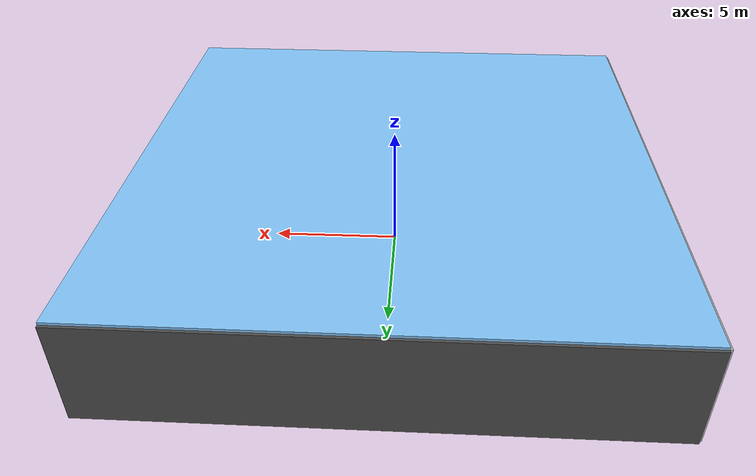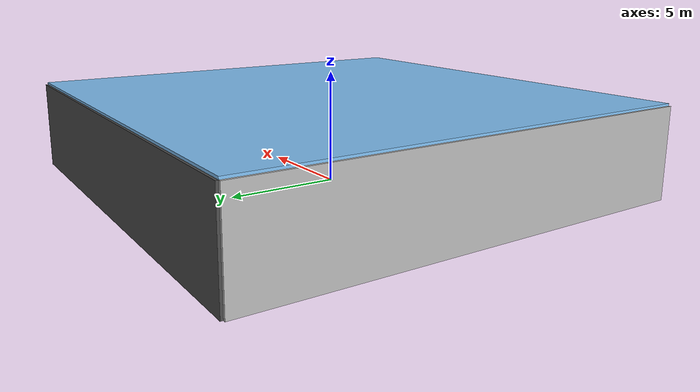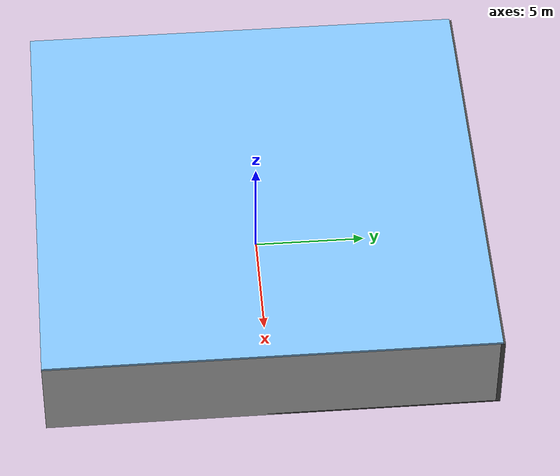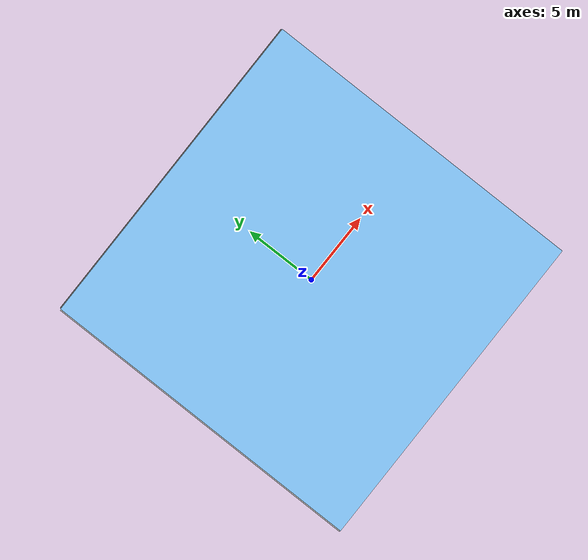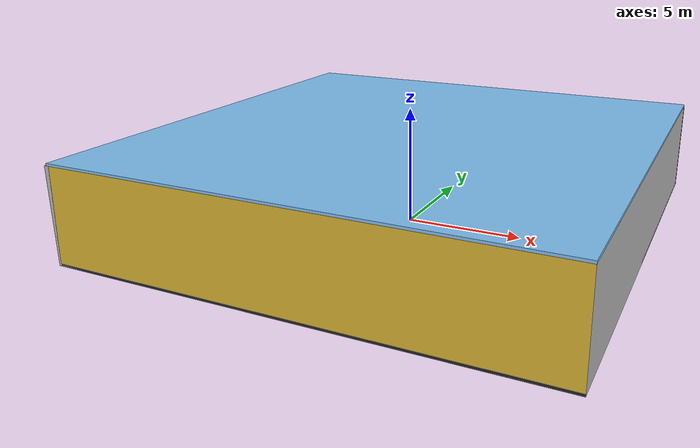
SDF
<sdf version="1.4">
 <world name="default">
  <physics type="ode">
   <max_step_size>0.001</max_step_size>
   <real_time_factor>1</real_time_factor>
   <real_time_update_rate>1000</real_time_update_rate>
   <gravity>0 0 -9.8</gravity>
  </physics>
  <scene><ambient>0.4 0.4 0.4 1</ambient><background>0.7 0.7 0.7 1</background><shadows>1</shadows></scene>
  <model name="Surrounding">
   <static>1</static>
   <link name="Ceiling">
    <collision name="Ceiling_Collision"><geometry><box><size>20 20 0.1</size></box></geometry></collision>
    <visual name="Ceiling_Visual">
     <geometry><box><size>20 20 0.1</size></box></geometry>
     <material>
      <script><uri>file://media/materials/scripts/gazebo.material</uri><name>Gazebo/SkyBlue</name></script>
     </material>
    </visual>
    <pose>0 0 4.05 0 0 0</pose>
   </link>
   <link name="Wall_South">
    <collision name="Wall_South_Collision">
     <geometry><box><size>20 0 4</size></box></geometry>
     <pose>0 0 2 0 -0 0</pose>
    </collision>
    <visual name="Wall_South_Visual">
     <pose>0 0 2 0 -0 0</pose>
     <geometry><box><size>20 0 4</size></box></geometry>
     <material>
      <script><uri>file://media/materials/scripts/gazebo.material</uri><name>Gazebo/Gold</name></script>
     </material>
    </visual>
    <velocity_decay><linear>0</linear><angular>0</angular></velocity_decay>
    <pose>0 -10 0 0 -0 0</pose>
   </link>
   <link name="Wall_East">
    <collision name="Wall_21_Collision">
     <geometry><box><size>20 0 4</size></box></geometry>
     <pose>0 0 2 0 -0 0</pose>
    </collision>
    <visual name="Wall_21_Visual">
     <pose>0 0 2 0 -0 0</pose>
     <geometry><box><size>20 0 4</size></box></geometry>
     <material>
      <script><uri>file://media/materials/scripts/gazebo.material</uri><name>Gazebo/JointAnchor</name></script>
     </material>
    </visual>
    <velocity_decay><linear>0</linear><angular>0</angular></velocity_decay>
    <pose>10 0 0 0 -0 1.5708</pose>
   </link>
   <link name="Wall_North">
    <collision name="Wall_22_Collision">
     <geometry><box><size>20 0.2 4</size></box></geometry>
     <pose>0 0 2 0 -0 0</pose>
    </collision>
    <visual name="Wall_22_Visual">
     <pose>0 0 2 0 -0 0</pose>
     <geometry><box><size>20 0.2 4</size></box></geometry>
     <material>
      <script><uri>file://media/materials/scripts/gazebo.material</uri><name>Gazebo/DarkGrey</name></script>
     </material>
    </visual>
    <velocity_decay><linear>0</linear><angular>0</angular></velocity_decay>
    <pose>0 10 0 0 -0 0</pose>
   </link>
   <link name="Wall_West">
    <collision name="Wall_23_Collision">
     <geometry><box><size>20 0.2 4</size></box></geometry>
     <pose>0 0 2 0 -0 0</pose>
    </collision>
    <visual name="Wall_23_Visual">
     <pose>0 0 2 0 -0 0</pose>
     <geometry><box><size>20 0.2 4</size></box></geometry>
     <material>
      <script><uri>file://media/materials/scripts/gazebo.material</uri><name>Gazebo/Pioneer2Body</name></script>
     </material>
    </visual>
    <velocity_decay><linear>0</linear><angular>0</angular></velocity_decay>
    <pose>-10 0 0 0 0 -1.5708</pose>
   </link>
   <link name="Ground_link">
    <collision name="collision">
     <pose>0 0 .05 0 -0 0</pose>
     <geometry><box><size>20 20 0.1</size></box></geometry>
    </collision>
    <visual name="visual">
     <pose>0 0 .05 0 -0 0</pose>
     <geometry><box><size>20 20 0.1</size></box></geometry>
     <material>
      <script><uri>file://media/materials/scripts/gazebo.material</uri><name>Gazebo/Black</name></script>
     </material>
    </visual>
   </link>
   <static>1</static>
  </model>
  <spherical_coordinates>
   <surface_model>EARTH_WGS84</surface_model>
   <latitude_deg>0</latitude_deg>
   <longitude_deg>0</longitude_deg>
   <elevation>0</elevation>
   <heading_deg>0</heading_deg>
  </spherical_coordinates>
  <light name="lightball_0" type="diffuse">
   <diffuse>0.8 0.8 0.8 1</diffuse>
   <specular>0.2 0.2 0.2 1</specular>
   <attenuation>
    <range>100</range>
    <constant>0.7</constant>
    <linear>0.01</linear>
    <quadratic>0.001</quadratic>
   </attenuation>
   <direction>-0.5 0.1 -0.9</direction>
   <pose>2.30974688141 -5.09406536979 0.845071622237 0 0 0</pose>
  </light>
  <light name="lightball_1" type="diffuse">
   <diffuse>0.8 0.8 0.8 1</diffuse>
   <specular>0.2 0.2 0.2 1</specular>
   <attenuation>
    <range>100</range>
    <constant>0.7</constant>
    <linear>0.01</linear>
    <quadratic>0.001</quadratic>
   </attenuation>
   <direction>-0.5 0.1 -0.9</direction>
   <pose>4.43167269072 5.66205465324 3.85635557281 0 0 0</pose>
  </light>
  <light name="lightball_2" type="diffuse">
   <diffuse>0.8 0.8 0.8 1</diffuse>
   <specular>0.2 0.2 0.2 1</specular>
   <attenuation>
    <range>100</range>
    <constant>0.7</constant>
    <linear>0.01</linear>
    <quadratic>0.001</quadratic>
   </attenuation>
   <direction>-0.5 0.1 -0.9</direction>
   <pose>-2.12526820954 -7.93437886526 3.79149642291 0 0 0</pose>
  </light>
  <light name="lightball_3" type="diffuse">
   <diffuse>0.8 0.8 0.8 1</diffuse>
   <specular>0.2 0.2 0.2 1</specular>
   <attenuation>
    <range>100</range>
    <constant>0.7</constant>
    <linear>0.01</linear>
    <quadratic>0.001</quadratic>
   </attenuation>
   <direction>-0.5 0.1 -0.9</direction>
   <pose>-5.92707380793 3.78590164119 1.06922269329 0 0 0</pose>
  </light>
  <light name="lightball_4" type="diffuse">
   <diffuse>0.8 0.8 0.8 1</diffuse>
   <specular>0.2 0.2 0.2 1</specular>
   <attenuation>
    <range>100</range>
    <constant>0.7</constant>
    <linear>0.01</linear>
    <quadratic>0.001</quadratic>
   </attenuation>
   <direction>-0.5 0.1 -0.9</direction>
   <pose>0.680145639432 0.00340244316517 2.50929083884 0 0 0</pose>
  </light>
  <light name="lightball_5" type="diffuse">
   <diffuse>0.8 0.8 0.8 1</diffuse>
   <specular>0.2 0.2 0.2 1</specular>
   <attenuation>
    <range>100</range>
    <constant>0.7</constant>
    <linear>0.01</linear>
    <quadratic>0.001</quadratic>
   </attenuation>
   <direction>-0.5 0.1 -0.9</direction>
   <pose>-8.11365981337 7.1703520561 3.54145665055 0 0 0</pose>
  </light>
  <light name="lightball_6" type="diffuse">
   <diffuse>0.8 0.8 0.8 1</diffuse>
   <specular>0.2 0.2 0.2 1</specular>
   <attenuation>
    <range>100</range>
    <constant>0.7</constant>
    <linear>0.01</linear>
    <quadratic>0.001</quadratic>
   </attenuation>
   <direction>-0.5 0.1 -0.9</direction>
   <pose>-2.97524460558 -3.61282798119 0.548166973251 0 0 0</pose>
  </light>
  <include><uri>model://cabinet</uri><pose>-3.72569808764 -4.54430591694 0 0 0 0.87712929845</pose></include>
  <include><uri>model://cabinet</uri><pose>-5.15253552923 4.57939246602 0 0 0 0.2105617591</pose></include>
  <include>
   <uri>model://construction_cone</uri>
   <pose>-3.7055394832 7.9223519859 0 0 0 1.2115796772</pose>
  </include>
  <include><uri>model://table</uri><pose>1.14565916783 -8.12536947053 0 0 0 2.20677356747</pose></include>
  <include>
   <uri>model://construction_cone</uri>
   <pose>1.14085955664 -2.17829742154 0 0 0 0.646061838288</pose>
  </include>
  <include>
   <uri>model://textured_shapes</uri>
   <pose>0.777724794289 7.98587849277 0 0 0 1.95725361246</pose>
  </include>
 </world>
</sdf>

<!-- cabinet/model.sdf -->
<sdf version="1.5">
  <model name="cabinet">
    <static>true</static>
    <link name="cabinet_bottom_plate">
      <inertial>
        <pose>0 0 -1 0 0 0</pose>
        <inertia>
          <ixx>2.050000</ixx>
          <ixy>0</ixy>
          <ixz>0</ixz>
          <iyy>2.050000</iyy>
          <iyz>0</iyz>
          <izz>2.050000</izz>
        </inertia>
        <mass>25.000000</mass>
      </inertial>
      <collision name="cabinet_bottom_plate_geom">
        <pose>0 0 0.010000 0 0 0</pose>
        <geometry>
          <box>
            <size>0.450000 0.450000 0.020000</size>
          </box>
        </geometry>
      </collision>
      <visual name="cabinet_bottom_plate_geom_visual">
        <pose>0 0 0.010000 0 0 0</pose>
        <geometry>
          <box>
            <size>0.450000 0.450000 0.020000</size>
          </box>
        </geometry>
        <material>
          <script>
            <uri>model://media/materials/scripts/gazebo.material</uri>
            <name>Gazebo/Wood</name>
          </script>
        </material>
      </visual>
      <collision name="cabinet_bottom_plate_geom_cabinet_back_plate">
        <pose>0.235000 0 0.510000 0 0 0</pose>
        <geometry>
          <box>
            <size>0.020000 0.450000 1.020000</size>
          </box>
        </geometry>
      </collision>
      <visual name="cabinet_bottom_plate_geom_cabinet_back_plate_visual">
        <pose>0.235000 0 0.510000 0 0 0</pose>
        <geometry>
          <box>
            <size>0.020000 0.450000 1.020000</size>
          </box>
        </geometry>
        <material>
          <script>
            <uri>model://media/materials/scripts/gazebo.material</uri>
            <name>Gazebo/Wood</name>
          </script>
        </material>
      </visual>
      <collision name="cabinet_bottom_plate_geom_cabinet_left_plate">
        <pose>0 0.235000 0.510000 0 0 0</pose>
        <geometry>
          <box>
            <size>0.450000 0.020000 1.020000</size>
          </box>
        </geometry>
      </collision>
      <visual name="cabinet_bottom_plate_geom_cabinet_left_plate_visual">
        <pose>0 0.235000 0.510000 0 0 0</pose>
        <geometry>
          <box>
            <size>0.450000 0.020000 1.020000</size>
          </box>
        </geometry>
        <material>
          <script>
            <uri>model://media/materials/scripts/gazebo.material</uri>
            <name>Gazebo/Wood</name>
          </script>
        </material>
      </visual>
      <collision name="cabinet_bottom_plate_geom_cabinet_middle_plate">
        <pose>0 0 0.510000 0 0 0</pose>
        <geometry>
          <box>
            <size>0.450000 0.450000 0.020000</size>
          </box>
        </geometry>
      </collision>
      <visual name="cabinet_bottom_plate_geom_cabinet_middle_plate_visual">
        <pose>0 0 0.510000 0 0 0</pose>
        <geometry>
          <box>
            <size>0.450000 0.450000 0.020000</size>
          </box>
        </geometry>
        <material>
          <script>
            <uri>model://media/materials/scripts/gazebo.material</uri>
            <name>Gazebo/Wood</name>
          </script>
        </material>
      </visual>
      <collision name="cabinet_bottom_plate_geom_cabinet_right_plate">
        <pose>0 -0.235000 0.510000 0 0 0</pose>
        <geometry>
          <box>
            <size>0.450000 0.020000 1.020000</size>
          </box>
        </geometry>
      </collision>
      <visual name="cabinet_bottom_plate_geom_cabinet_right_plate_visual">
        <pose>0 -0.235000 0.510000 0 0 0</pose>
        <geometry>
          <box>
            <size>0.450000 0.020000 1.020000</size>
          </box>
        </geometry>
        <material>
          <script>
            <uri>model://media/materials/scripts/gazebo.material</uri>
            <name>Gazebo/Wood</name>
          </script>
        </material>
      </visual>
      <collision name="cabinet_bottom_plate_geom_cabinet_top_plate">
        <pose>0 0 1.010000 0 0 0</pose>
        <geometry>
          <box>
            <size>0.450000 0.450000 0.020000</size>
          </box>
        </geometry>
      </collision>
      <visual name="cabinet_bottom_plate_geom_cabinet_top_plate_visual">
        <pose>0 0 1.010000 0 0 0</pose>
        <geometry>
          <box>
            <size>0.450000 0.450000 0.020000</size>
          </box>
        </geometry>
        <material>
          <script>
            <uri>model://media/materials/scripts/gazebo.material</uri>
            <name>Gazebo/Wood</name>
          </script>
        </material>
      </visual>
    </link>
  </model>
</sdf>

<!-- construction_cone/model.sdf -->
<sdf version="1.5">
  <model name="Construction Cone">
    <link name="link">
      <collision name="collision">
        <geometry>
          <mesh>
            <scale>10 10 10</scale>
            <uri>file://isr-testbed/construction_cone/meshes/construction_cone.dae</uri>
          </mesh>
        </geometry>
      </collision>
      <visual name="visual">
        <geometry>
          <mesh>
            <scale>10 10 10</scale>
            <uri>file://isr-testbed/construction_cone/meshes/construction_cone.dae</uri>
          </mesh>
        </geometry>
      </visual>
    </link>
  </model>
</sdf>

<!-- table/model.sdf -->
<sdf version="1.5">
  <model name="table">
    <static>true</static>
    <link name="link">
      <collision name="surface">
        <pose>0 0 1.0 0 0 0</pose>
        <geometry>
          <box>
            <size>1.5 0.8 0.03</size>
          </box>
        </geometry>
        <surface>
          <friction>
            <ode>
              <mu>0.6</mu>
              <mu2>0.6</mu2>
            </ode>
          </friction>
        </surface>
      </collision>
      <visual name="visual1">
        <pose>0 0 1.0 0 0 0</pose>
        <geometry>
          <box>
            <size>1.5 0.8 0.03</size>
          </box>
        </geometry>
        <material>
          <script>
            <uri>model://media/materials/scripts/gazebo.material</uri>
            <name>Gazebo/Wood</name>
          </script>
        </material>
      </visual>
      <collision name="front_left_leg">
        <pose>0.68 0.38 0.5 0 0 0</pose>
        <geometry>
          <cylinder>
            <radius>0.02</radius>
            <length>1.0</length>
          </cylinder>
        </geometry>
      </collision>
      <visual name="front_left_leg">
        <pose>0.68 0.38 0.5 0 0 0</pose>
        <geometry>
          <cylinder>
            <radius>0.02</radius>
            <length>1.0</length>
          </cylinder>
        </geometry>
        <material>
          <script>
            <uri>model://media/materials/scripts/gazebo.material</uri>
            <name>Gazebo/Grey</name>
          </script>
        </material>
      </visual>
      <collision name="front_right_leg">
        <pose>0.68 -0.38 0.5 0 0 0</pose>
        <geometry>
          <cylinder>
            <radius>0.02</radius>
            <length>1.0</length>
          </cylinder>
        </geometry>
      </collision>
      <visual name="front_right_leg">
        <pose>0.68 -0.38 0.5 0 0 0</pose>
        <geometry>
          <cylinder>
            <radius>0.02</radius>
            <length>1.0</length>
          </cylinder>
        </geometry>
        <material>
          <script>
            <uri>model://media/materials/scripts/gazebo.material</uri>
            <name>Gazebo/Grey</name>
          </script>
        </material>
      </visual>
      <collision name="back_right_leg">
        <pose>-0.68 -0.38 0.5 0 0 0</pose>
        <geometry>
          <cylinder>
            <radius>0.02</radius>
            <length>1.0</length>
          </cylinder>
        </geometry>
      </collision>
      <visual name="back_right_leg">
        <pose>-0.68 -0.38 0.5 0 0 0</pose>
        <geometry>
          <cylinder>
            <radius>0.02</radius>
            <length>1.0</length>
          </cylinder>
        </geometry>
        <material>
          <script>
            <uri>model://media/materials/scripts/gazebo.material</uri>
            <name>Gazebo/Grey</name>
          </script>
        </material>
      </visual>
      <collision name="back_left_leg">
        <pose>-0.68 0.38 0.5 0 0 0</pose>
        <geometry>
          <cylinder>
            <radius>0.02</radius>
            <length>1.0</length>
          </cylinder>
        </geometry>
      </collision>
      <visual name="back_left_leg">
        <pose>-0.68 0.38 0.5 0 0 0</pose>
        <geometry>
          <cylinder>
            <radius>0.02</radius>
            <length>1.0</length>
          </cylinder>
        </geometry>
        <material>
          <script>
            <uri>model://media/materials/scripts/gazebo.material</uri>
            <name>Gazebo/Grey</name>
          </script>
        </material>
      </visual>
    </link>
  </model>
</sdf>

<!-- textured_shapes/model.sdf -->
<sdf version="1.6">
  <model name="textured_shapes">
    <pose>0 0 0.5 0 0 0</pose>
    <link name="box">
      <pose>0 -1.5 0 0 0 0</pose>
      <collision name="collision">
        <geometry>
          <box>
            <size>1 1 1</size>
          </box>
        </geometry>
      </collision>
      <visual name="visual">
        <geometry>
          <box>
            <size>1 1 1</size>
          </box>
        </geometry>
        <material>
          <script>
            <uri>model://../model_source/models/textured_shapes/materials/scripts</uri>
            <uri>model://../model_source/models/textured_shapes/materials/textures</uri>
            <name>TexturedShape/Squares</name>
          </script>
        </material>
      </visual>
    </link>
    <link name="sphere">
      <collision name="collision">
        <geometry>
          <sphere>
            <radius>0.5</radius>
          </sphere>
        </geometry>
      </collision>
      <visual name="visual">
        <geometry>
          <sphere>
            <radius>0.5</radius>
          </sphere>
        </geometry>
        <material>
          <script>
            <uri>model://../model_source/models/textured_shapes/materials/scripts</uri>
            <uri>model://../model_source/models/textured_shapes/materials/textures</uri>
            <name>TexturedShape/Squares</name>
          </script>
        </material>
      </visual>
    </link>
    <link name="cylinder">
      <pose>0 1.5 0 0 0 0</pose>
      <collision name="collision">
        <geometry>
          <cylinder>
            <radius>0.5</radius>
            <length>1</length>
          </cylinder>
        </geometry>
      </collision>
      <visual name="visual">
        <geometry>
          <cylinder>
            <radius>0.5</radius>
            <length>1</length>
          </cylinder>
        </geometry>
        <material>
          <script>
            <uri>model://../model_source/models/textured_shapes/materials/scripts</uri>
            <uri>model://../model_source/models/textured_shapes/materials/textures</uri>
            <name>TexturedShape/Squares</name>
          </script>
        </material>
      </visual>
    </link>
  </model>
</sdf>
